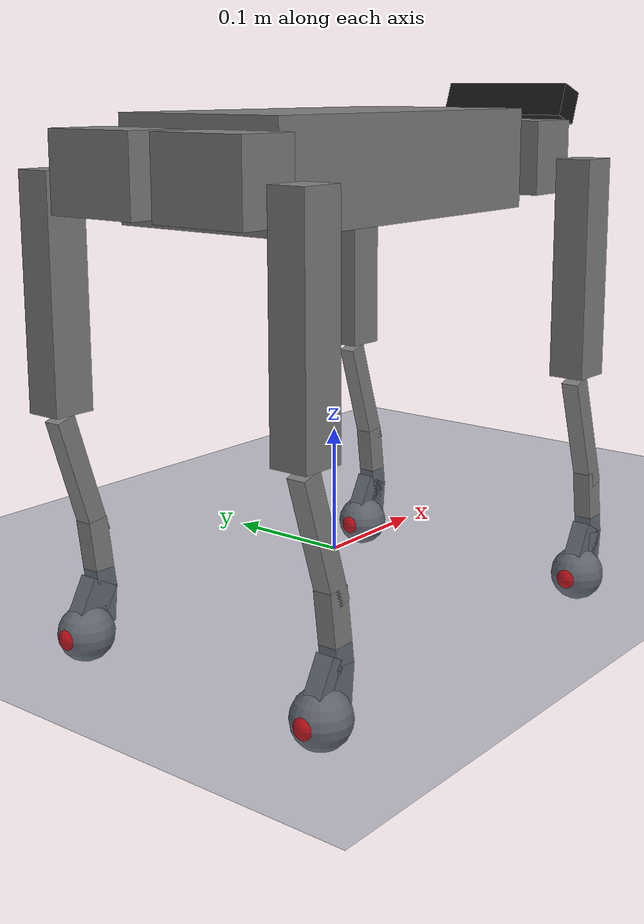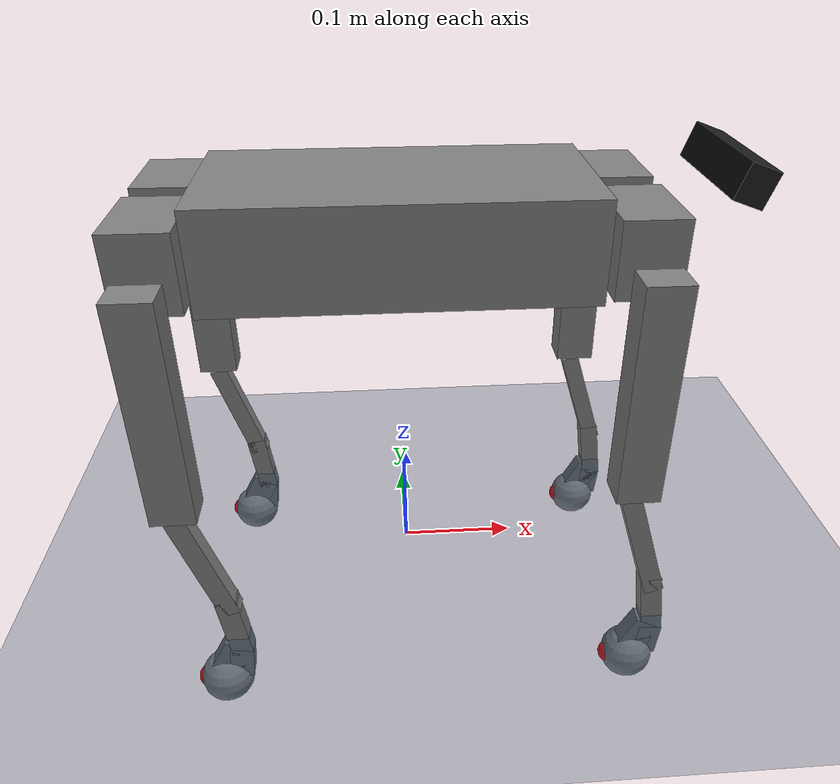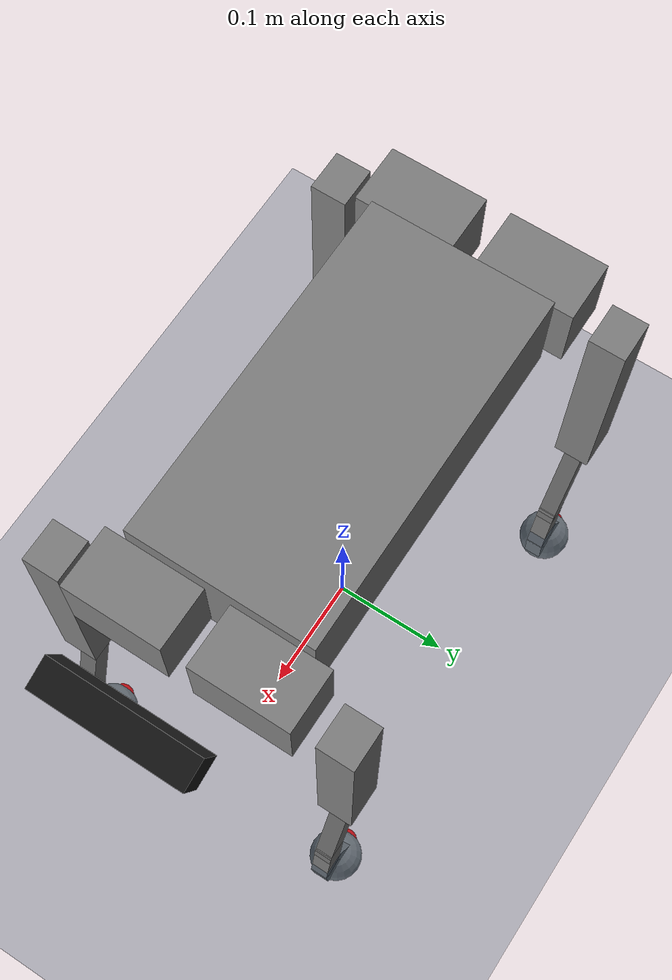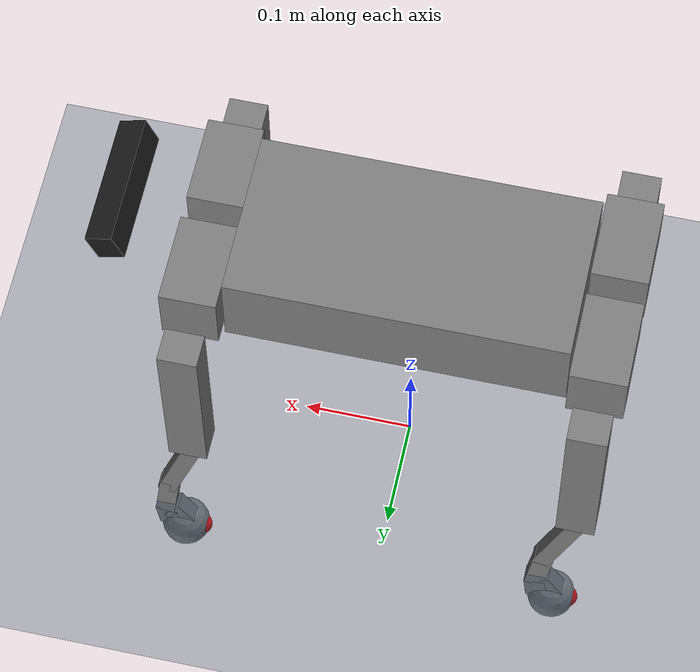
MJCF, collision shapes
<mujoco model="dog_502 scene">
  <include file="dog_502.xml"/>

  <statistic center="1.0 0.7 1.0" extent="0.8"/>

  <visual>
    <headlight diffuse="0.6 0.6 0.6" ambient="0.1 0.1 0.1" specular="0.9 0.9 0.9"/>
    <rgba haze="0.15 0.25 0.35 1"/>
    <global azimuth="-140" elevation="-20"/>
  </visual>

  <asset>
    <texture type="skybox" builtin="flat" rgb1="0 0 0" rgb2="0 0 0" width="512" height="3072"/>
    <texture type="2d" name="groundplane" builtin="checker" mark="edge" rgb1="0.2 0.3 0.4" rgb2="0.1 0.2 0.3" markrgb="0.8 0.8 0.8" width="300" height="300"/>
    <material name="groundplane" texture="groundplane" texuniform="true" texrepeat="5 5" reflectance="0.2"/>
  </asset>

  <worldbody>
    <light pos="1 0 3.5" dir="0 0 -1" directional="true"/>
    <geom name="floor" size="0 0 0.05" type="plane" material="groundplane"/>
  </worldbody>
</mujoco>

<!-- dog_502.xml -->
<mujoco model="dog_502_description">
  <compiler angle="radian" meshdir="../../../dog_502_description/meshes"/>

  <default>
    <joint damping="0.01" armature="0.01" frictionloss="0.02"/>
    <geom condim="3" friction="0.8 0.02 0.01"/>
    <default class="visual">
      <geom type="mesh" contype="0" conaffinity="0" group="2"/>
    </default>
  </default>

  <asset>
    <material name="light_grey" rgba="0.75294 0.75294 0.75294 1"/>
    <material name="black" rgba="0.1 0.1 0.1 1"/>
    <material name="red" rgba="1.0 0.0 0.0 1"/>

    <mesh name="base_link_mesh" file="base_link.STL"/>
    <mesh name="FL_hip_mesh" file="FL_hip.STL"/>
    <mesh name="FR_hip_mesh" file="FR_hip.STL"/>
    <mesh name="RL_hip_mesh" file="RL_hip.STL"/>
    <mesh name="RR_hip_mesh" file="RR_hip.STL"/>
    <mesh name="FL_thigh_mesh" file="FL_thigh.STL"/>
    <mesh name="FR_thigh_mesh" file="FR_thigh.STL"/>
    <mesh name="RL_thigh_mesh" file="RL_thigh.STL"/>
    <mesh name="RR_thigh_mesh" file="RR_thigh.STL"/>
    <mesh name="FL_calf_mesh" file="FL_calf.STL"/>
    <mesh name="FR_calf_mesh" file="FR_calf.STL"/>
    <mesh name="RL_calf_mesh" file="RL_calf.STL"/>
    <mesh name="RR_calf_mesh" file="RR_calf.STL"/>
  </asset>

  <worldbody>
    <body name="base" pos="0 0 0.31">
      <inertial pos="0.000037 0.001297 -0.002295" mass="4.142449" diaginertia="0.013374 0.031506 0.039388"/>
      <freejoint name="root"/>
      <geom mesh="base_link_mesh" material="light_grey" class="visual"/>
      <geom name="base_collision" type="box" size="0.15 0.075 0.04"/>

      <body name="camera" pos="0.255 0 0.04185" quat="0.984811 0 0.173672 0">
        <geom name="camera_visual" type="box" size="0.0125 0.06 0.0145" material="black" contype="0" conaffinity="0" group="2"/>
      </body>

      <body name="FL_hip" pos="0.1767 0.05 0">
        <inertial pos="-0.00457081 -0.00969999 0.0002578" mass="0.50149755" diaginertia="0.00011158 0.00021376 0.00016301"/>
        <joint name="FL_hip_joint" axis="1 0 0" range="-0.837758 0.837758" actuatorfrcrange="-17 17"/>
        <geom mesh="FL_hip_mesh" material="light_grey" class="visual"/>
        <geom name="FL_hip_collision" type="box" size="0.025 0.04 0.03"/>
        <body name="FL_thigh" pos="0 0.0684 0">
          <inertial pos="-0.00194747 -0.02547458 -0.01388663" mass="0.64867804" diaginertia="0.00138293 0.00137329 0.00032193"/>
          <joint name="FL_thigh_joint" axis="0 1 0" range="-1.5708 3.49066" actuatorfrcrange="-17 17"/>
          <geom mesh="FL_thigh_mesh" material="light_grey" class="visual"/>
          <geom name="FL_thigh_collision" type="box" pos="0 0 -0.09" quat="0.707107 0 0.707107 0" size="0.09 0.015 0.0175"/>
          <body name="FL_calf" pos="0 0 -0.18">
            <inertial pos="0.01310003 -0.00009903 -0.09935467" mass="0.06024443" diaginertia="0.0003599 0.00036988 0.00001166"/>
            <joint name="FL_calf_joint" axis="0 1 0" range="-2.72271 -0.837758" actuatorfrcrange="-17 17"/>
            <geom mesh="FL_calf_mesh" material="light_grey" class="visual"/>
            <geom name="FL_calf_collision_0" type="box" pos="0.013 0 -0.053" quat="0.988392 0 -0.151909 0" size="0.00825 0.0075 0.05106"/>
            <geom name="FL_calf_collision_1" type="box" pos="0.0285 0 -0.119" quat="0.997889 0 -0.064954 0" size="0.009 0.0075 0.03"/>
            <geom name="FL_calf_collision_2" type="box" pos="0.02021 0 -0.15878" quat="0.968912 0 0.247404 0" size="0.0125 0.0075 0.02"/>
            <geom name="FL_calf_collision_3" type="box" pos="0.03 0 -0.16" quat="0.998750 0 0.049979 0" size="0.01 0.0075 0.015"/>
            <body name="FL_foot" pos="0 0 -0.18">
              <inertial pos="0 0 0" mass="0.04" diaginertia="0.0000096 0.0000096 0.0000096"/>
              <geom name="FL_foot_visual" type="sphere" size="0.01" material="red" contype="0" conaffinity="0" group="2"/>
              <geom name="FL_foot_collision" type="sphere" pos="0.015 0 0" size="0.0225"/>
            </body>
          </body>
        </body>
      </body>

      <body name="FR_hip" pos="0.1767 -0.05 0">
        <inertial pos="-0.00444412 0.00969999 0.00054368" mass="0.50149755" diaginertia="0.00011122 0.00021421 0.00016383"/>
        <joint name="FR_hip_joint" axis="1 0 0" range="-0.837758 0.837758" actuatorfrcrange="-17 17"/>
        <geom mesh="FR_hip_mesh" material="light_grey" class="visual"/>
        <geom name="FR_hip_collision" type="box" size="0.025 0.04 0.03"/>
        <body name="FR_thigh" pos="0 -0.0684 0">
          <inertial pos="-0.00096707 0.02548196 -0.01388686" mass="0.64867934" diaginertia="0.00138275 0.00137516 0.00032358"/>
          <joint name="FR_thigh_joint" axis="0 1 0" range="-1.5708 3.49066" actuatorfrcrange="-17 17"/>
          <geom mesh="FR_thigh_mesh" material="light_grey" class="visual"/>
          <geom name="FR_thigh_collision" type="box" pos="0 0 -0.09" quat="0.707107 0 0.707107 0" size="0.09 0.015 0.0175"/>
          <body name="FR_calf" pos="0 0 -0.18">
            <inertial pos="0.01310003 0.00010097 -0.09935467" mass="0.06024443" diaginertia="0.0003599 0.00036988 0.00001166"/>
            <joint name="FR_calf_joint" axis="0 1 0" range="-2.72271 -0.837758" actuatorfrcrange="-17 17"/>
            <geom mesh="FR_calf_mesh" material="light_grey" class="visual"/>
            <geom name="FR_calf_collision_0" type="box" pos="0.013 0 -0.053" quat="0.988392 0 -0.151909 0" size="0.00825 0.0075 0.05106"/>
            <geom name="FR_calf_collision_1" type="box" pos="0.0285 0 -0.119" quat="0.997889 0 -0.064954 0" size="0.009 0.0075 0.03"/>
            <geom name="FR_calf_collision_2" type="box" pos="0.02021 0 -0.15878" quat="0.968912 0 0.247404 0" size="0.0125 0.0075 0.02"/>
            <geom name="FR_calf_collision_3" type="box" pos="0.03 0 -0.16" quat="0.998750 0 0.049979 0" size="0.01 0.0075 0.015"/>
            <body name="FR_foot" pos="0 0 -0.18">
              <inertial pos="0 0 0" mass="0.04" diaginertia="0.0000096 0.0000096 0.0000096"/>
              <geom name="FR_foot_visual" type="sphere" size="0.01" material="red" contype="0" conaffinity="0" group="2"/>
              <geom name="FR_foot_collision" type="sphere" pos="0.015 0 0" size="0.0225"/>
            </body>
          </body>
        </body>
      </body>

      <body name="RL_hip" pos="-0.1767 0.05 0">
        <inertial pos="0.00329874 -0.00969999 0.00094432" mass="0.50149755" diaginertia="0.00011271 0.00021836 0.00016649"/>
        <joint name="RL_hip_joint" axis="1 0 0" range="-0.837758 0.837758" actuatorfrcrange="-17 17"/>
        <geom mesh="RL_hip_mesh" material="light_grey" class="visual"/>
        <geom name="RL_hip_collision" type="box" size="0.025 0.04 0.03"/>
        <body name="RL_thigh" pos="0 0.0684 0">
          <inertial pos="-0.00120536 -0.02547458 -0.01523822" mass="0.64867804" diaginertia="0.00135600 0.00134928 0.00032485"/>
          <joint name="RL_thigh_joint" axis="0 1 0" range="-1.5708 3.49066" actuatorfrcrange="-17 17"/>
          <geom mesh="RL_thigh_mesh" material="light_grey" class="visual"/>
          <geom name="RL_thigh_collision" type="box" pos="0 0 -0.09" quat="0.707107 0 0.707107 0" size="0.09 0.015 0.0175"/>
          <body name="RL_calf" pos="0 0 -0.18">
            <inertial pos="0.01310003 -0.00009903 -0.09935467" mass="0.06024443" diaginertia="0.0003599 0.00036988 0.00001166"/>
            <joint name="RL_calf_joint" axis="0 1 0" range="-2.72271 -0.837758" actuatorfrcrange="-17 17"/>
            <geom mesh="RL_calf_mesh" material="light_grey" class="visual"/>
            <geom name="RL_calf_collision_0" type="box" pos="0.013 0 -0.053" quat="0.988392 0 -0.151909 0" size="0.00825 0.0075 0.05106"/>
            <geom name="RL_calf_collision_1" type="box" pos="0.0285 0 -0.119" quat="0.997889 0 -0.064954 0" size="0.009 0.0075 0.03"/>
            <geom name="RL_calf_collision_2" type="box" pos="0.02021 0 -0.15878" quat="0.968912 0 0.247404 0" size="0.0125 0.0075 0.02"/>
            <geom name="RL_calf_collision_3" type="box" pos="0.03 0 -0.16" quat="0.998750 0 0.049979 0" size="0.01 0.0075 0.015"/>
            <body name="RL_foot" pos="0 0 -0.18">
              <inertial pos="0 0 0" mass="0.04" diaginertia="0.0000096 0.0000096 0.0000096"/>
              <geom name="RL_foot_visual" type="sphere" size="0.01" material="red" contype="0" conaffinity="0" group="2"/>
              <geom name="RL_foot_collision" type="sphere" pos="0.015 0 0" size="0.0225"/>
            </body>
          </body>
        </body>
      </body>

      <body name="RR_hip" pos="-0.1767 -0.05 0">
        <inertial pos="0.00444412 0.00969999 -0.00054368" mass="0.50149755" diaginertia="0.00011122 0.00021421 0.00016383"/>
        <joint name="RR_hip_joint" axis="1 0 0" range="-0.837758 0.837758" actuatorfrcrange="-17 17"/>
        <geom mesh="RR_hip_mesh" material="light_grey" class="visual"/>
        <geom name="RR_hip_collision" type="box" size="0.025 0.04 0.03"/>
        <body name="RR_thigh" pos="0 -0.0684 0">
          <inertial pos="-0.00212669 0.02547451 -0.01490311" mass="0.64867934" diaginertia="0.00136777 0.00135386 0.00031766"/>
          <joint name="RR_thigh_joint" axis="0 1 0" range="-1.5708 3.49066" actuatorfrcrange="-17 17"/>
          <geom mesh="RR_thigh_mesh" material="light_grey" class="visual"/>
          <geom name="RR_thigh_collision" type="box" pos="0 0 -0.09" quat="0.707107 0 0.707107 0" size="0.09 0.015 0.0175"/>
          <body name="RR_calf" pos="0 0 -0.18">
            <inertial pos="0.01310003 0.00010097 -0.09935467" mass="0.06024443" diaginertia="0.0003599 0.00036988 0.00001166"/>
            <joint name="RR_calf_joint" axis="0 1 0" range="-2.72271 -0.837758" actuatorfrcrange="-17 17"/>
            <geom mesh="RR_calf_mesh" material="light_grey" class="visual"/>
            <geom name="RR_calf_collision_0" type="box" pos="0.013 0 -0.053" quat="0.988392 0 -0.151909 0" size="0.00825 0.0075 0.05106"/>
            <geom name="RR_calf_collision_1" type="box" pos="0.0285 0 -0.119" quat="0.997889 0 -0.064954 0" size="0.009 0.0075 0.03"/>
            <geom name="RR_calf_collision_2" type="box" pos="0.02021 0 -0.15878" quat="0.968912 0 0.247404 0" size="0.0125 0.0075 0.02"/>
            <geom name="RR_calf_collision_3" type="box" pos="0.03 0 -0.16" quat="0.998750 0 0.049979 0" size="0.01 0.0075 0.015"/>
            <body name="RR_foot" pos="0 0 -0.18">
              <inertial pos="0 0 0" mass="0.04" diaginertia="0.0000096 0.0000096 0.0000096"/>
              <geom name="RR_foot_visual" type="sphere" size="0.01" material="red" contype="0" conaffinity="0" group="2"/>
              <geom name="RR_foot_collision" type="sphere" pos="0.015 0 0" size="0.0225"/>
            </body>
          </body>
        </body>
      </body>
    </body>
  </worldbody>

  <actuator>
    <motor name="FL_hip" joint="FL_hip_joint" ctrllimited="true" ctrlrange="-17 17"/>
    <motor name="FL_thigh" joint="FL_thigh_joint" ctrllimited="true" ctrlrange="-17 17"/>
    <motor name="FL_calf" joint="FL_calf_joint" ctrllimited="true" ctrlrange="-17 17"/>
    <motor name="FR_hip" joint="FR_hip_joint" ctrllimited="true" ctrlrange="-17 17"/>
    <motor name="FR_thigh" joint="FR_thigh_joint" ctrllimited="true" ctrlrange="-17 17"/>
    <motor name="FR_calf" joint="FR_calf_joint" ctrllimited="true" ctrlrange="-17 17"/>
    <motor name="RL_hip" joint="RL_hip_joint" ctrllimited="true" ctrlrange="-17 17"/>
    <motor name="RL_thigh" joint="RL_thigh_joint" ctrllimited="true" ctrlrange="-17 17"/>
    <motor name="RL_calf" joint="RL_calf_joint" ctrllimited="true" ctrlrange="-17 17"/>
    <motor name="RR_hip" joint="RR_hip_joint" ctrllimited="true" ctrlrange="-17 17"/>
    <motor name="RR_thigh" joint="RR_thigh_joint" ctrllimited="true" ctrlrange="-17 17"/>
    <motor name="RR_calf" joint="RR_calf_joint" ctrllimited="true" ctrlrange="-17 17"/>
  </actuator>
</mujoco>
